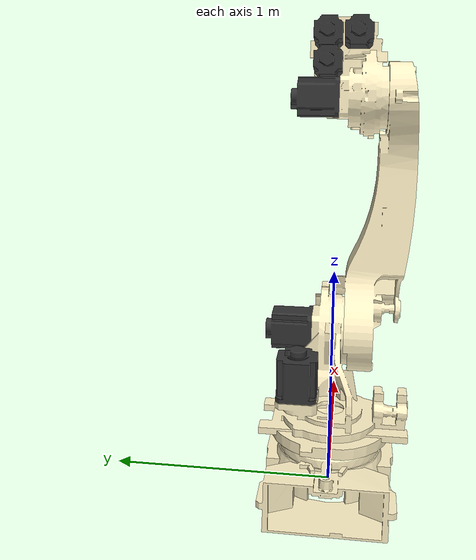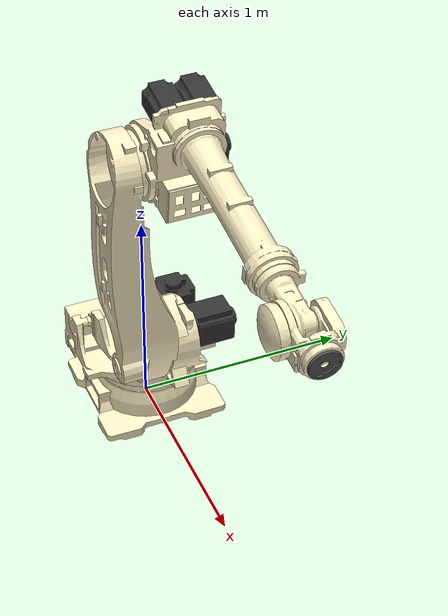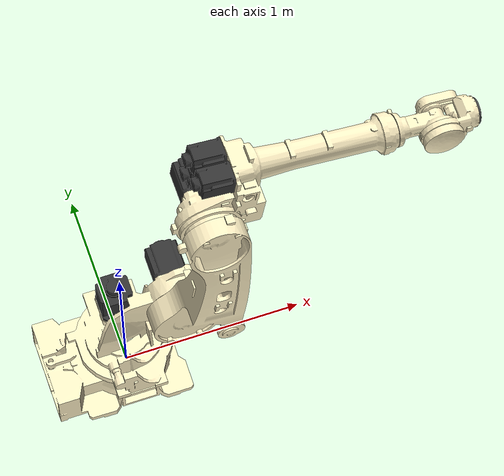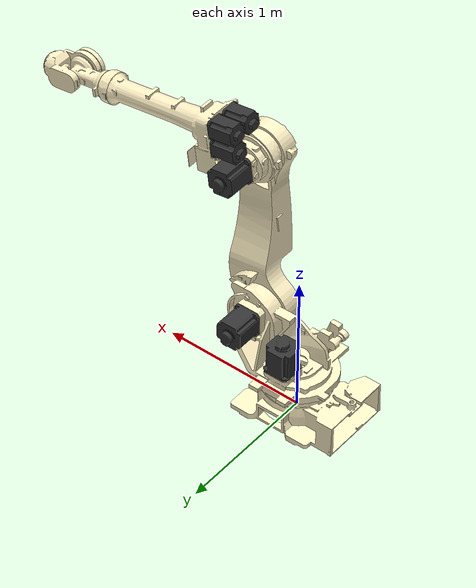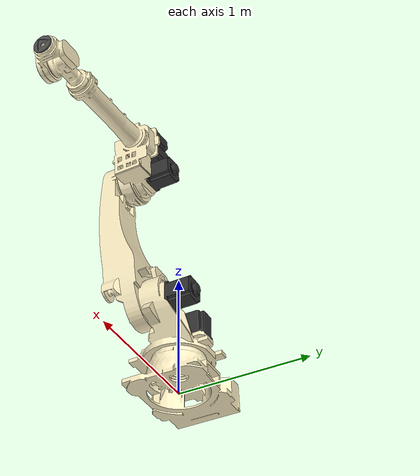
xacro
<?xml version="1.0" encoding="UTF-8"?>
<robot xmlns:xacro="http://wiki.ros.org/xacro" name="$(arg name)">
  <xacro:arg name="robot_model" default="hdr220_26" />
  <xacro:arg name="name" default="hdr_robot"/>
  <xacro:arg name="use_sim" default="false" />
  <xacro:arg name="use_mock_hardware" default="false" />
  <xacro:arg name="hdr_ros2_control" default="" />
  <xacro:arg name="hw_interface" default="" />
  <xacro:arg name="openapi_ip" default="192.168.1.150" />
  <xacro:arg name="openapi_port" default="8888" />
  <xacro:arg name="command_port" default="8000" />
  <xacro:arg name="command_start_time" default="-1.0" />
  <xacro:arg name="command_buffer_size" default="2" />
  <xacro:arg name="initial_positions_file" default=""/>
  <xacro:arg name="update_rate" default="100" />

  <xacro:property name="initial_positions_file" value="$(arg initial_positions_file)"/>

  <xacro:include filename="$(find hdr_description)/urdf/robots/$(arg robot_model)/$(arg robot_model).urdf.xacro" />
  <xacro:include filename="$(find hdr_description)/urdf/hdr.ros2_control.xacro" />

  <xacro:hdr_ros2_control
    name="$(arg name)"
    robot_model="$(arg robot_model)"
    use_sim="$(arg use_sim)"
    use_mock_hardware="$(arg use_mock_hardware)"
    initial_positions_file="$(arg initial_positions_file)"
    openapi_ip="$(arg openapi_ip)"
    openapi_port="$(arg openapi_port)"
    command_port="$(arg command_port)"
    command_start_time="$(arg command_start_time)"
    command_buffer_size="$(arg command_buffer_size)"
    update_rate="$(arg update_rate)"
  />

  <xacro:include filename="$(find hdr_description)/urdf/hdr_transmissions.xacro" />
  <xacro:hdr_transmission
    hw_interface="$(arg hw_interface)"
  />

  <xacro:if value="$(arg use_sim)">
    <link name="ground_plane">
      <visual>
        <origin rpy="0 0 0" xyz="0 0 0"/>
        <geometry>
          <box size="5 5 0"/>
        </geometry>
        <material name="ground_white">
          <color rgba="1 1 1 0.5"/>
        </material>
      </visual>
      <collision>
        <origin rpy="0 0 0" xyz="0 0 0"/>
        <geometry>
          <box size="5 5 0"/>
        </geometry>
      </collision>
    </link>

    <joint name="ground_plane_joint" type="fixed">
      <origin xyz="0 0 -0.01" rpy="0 0 0"/>
      <parent link="world"/>
      <child link="ground_plane"/>
    </joint>

    <gazebo reference="world">
    </gazebo>
    <gazebo>
      <plugin filename="libgz_ros2_control-system.so" name="gz_ros2_control::GazeboSimROS2ControlPlugin">
        <parameters>$(arg hdr_ros2_control)</parameters>
        <controller_manager_node_name>controller_manager</controller_manager_node_name>
      </plugin>
    </gazebo>
  </xacro:if>
</robot>

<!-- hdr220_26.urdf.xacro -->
<robot name="hdr_robot" xmlns:xacro="http://ros.org/wiki/xacro">
  <material name="ivory">
    <color rgba="1.0 0.945 0.773 1.0" />
  </material>
  <material name="black">
    <color rgba="0.2 0.2 0.2 1.0"/>
  </material>
  <material name="gray">
    <color rgba="0.3 0.3 0.3 1.0"/>
  </material>
  <xacro:property name="mesh_scale" value="0.001" />
  <link name="base_link">
    <visual>
      <geometry>
        <mesh filename="file://$(find hdr_description)/meshes/robots/hdr220_26/visual/base_body.stl" scale="${mesh_scale} ${mesh_scale} ${mesh_scale}"/>
      </geometry>
      <material name="ivory"/>
    </visual>
    <collision>
      <geometry>
        <mesh filename="file://$(find hdr_description)/meshes/robots/hdr220_26/collision/base_body.stl" scale="${mesh_scale} ${mesh_scale} ${mesh_scale}"/>
      </geometry>
    </collision>
    <inertial>
      <mass value="212.4525"/>
      <origin xyz="0 0 0" rpy="0 0 0"/>
      <inertia ixx="8.0534" ixy="0" ixz="0" iyy="11.7728" iyz="0" izz="16.4665"/>
    </inertial>
  </link>
  <link name="lower_frame_link">
    <visual>
      <geometry>
        <mesh filename="file://$(find hdr_description)/meshes/robots/hdr220_26/visual/lower_frame.stl" scale="${mesh_scale} ${mesh_scale} ${mesh_scale}"/>
      </geometry>
      <material name="ivory"/>
    </visual>
    <collision>
      <geometry>
        <mesh filename="file://$(find hdr_description)/meshes/robots/hdr220_26/collision/lower_frame.stl" scale="${mesh_scale} ${mesh_scale} ${mesh_scale}"/>
      </geometry>
    </collision>
    <inertial>
      <mass value="415.9115"/>
      <origin xyz="0 0 0" rpy="0 0 0"/>
      <inertia ixx="24.9038" ixy="0" ixz="0" iyy="32.199" iyz="0" izz="36.1335"/>
    </inertial>
  </link>
  <link name="upper_frame_link">
    <visual>
      <geometry>
        <mesh filename="file://$(find hdr_description)/meshes/robots/hdr220_26/visual/upper_frame.stl" scale="${mesh_scale} ${mesh_scale} ${mesh_scale}"/>
      </geometry>
      <material name="ivory"/>
    </visual>
    <collision>
      <geometry>
        <mesh filename="file://$(find hdr_description)/meshes/robots/hdr220_26/collision/upper_frame.stl" scale="${mesh_scale} ${mesh_scale} ${mesh_scale}"/>
      </geometry>
    </collision>
    <inertial>
      <mass value="149.0275"/>
      <origin xyz="0 0 0" rpy="0 0 0"/>
      <inertia ixx="28.1962" ixy="0" ixz="0" iyy="29.199" iyz="0" izz="4.4775"/>
    </inertial>
  </link>
  <link name="arm_link">
    <visual>
      <geometry>
        <mesh filename="file://$(find hdr_description)/meshes/robots/hdr220_26/visual/arm.stl" scale="${mesh_scale} ${mesh_scale} ${mesh_scale}"/>
      </geometry>
      <material name="ivory"/>
    </visual>
    <collision>
      <geometry>
        <mesh filename="file://$(find hdr_description)/meshes/robots/hdr220_26/collision/arm.stl" scale="${mesh_scale} ${mesh_scale} ${mesh_scale}"/>
      </geometry>
    </collision>
    <inertial>
      <mass value="254.6605"/>
      <origin xyz="0 0 0" rpy="0 0 0"/>
      <inertia ixx="9.9531" ixy="0" ixz="0" iyy="38.4396" iyz="0" izz="34.8443"/>
    </inertial>
  </link>
  <link name="wrist_body_link">
    <visual>
      <origin xyz="1.25 0 -0.008" rpy="0 0 0"/>
      <geometry>
        <mesh filename="file://$(find hdr_description)/meshes/robots/hdr220_26/visual/wrist_body.stl" scale="${mesh_scale} ${mesh_scale} ${mesh_scale}"/>
      </geometry>
      <material name="ivory"/>
    </visual>
    <collision>
      <origin xyz="1.25 0 -0.008" rpy="0 0 0"/>
      <geometry>
        <mesh filename="file://$(find hdr_description)/meshes/robots/hdr220_26/collision/wrist_body.stl" scale="${mesh_scale} ${mesh_scale} ${mesh_scale}"/>
      </geometry>
    </collision>
    <inertial>
      <mass value="19.59"/>
      <origin xyz="1.25 0 -0.008" rpy="0 0 0"/>
      <inertia ixx="0.1209" ixy="0" ixz="0" iyy="0.2284" iyz="0" izz="0.2388"/>
    </inertial>
  </link>
  <link name="wrist_holder_link">
    <visual>
      <geometry>
        <mesh filename="file://$(find hdr_description)/meshes/robots/hdr220_26/visual/wrist_holder.stl" scale="${mesh_scale} ${mesh_scale} ${mesh_scale}"/>
      </geometry>
      <material name="ivory"/>
    </visual>
    <collision>
      <geometry>
        <mesh filename="file://$(find hdr_description)/meshes/robots/hdr220_26/collision/wrist_holder.stl" scale="${mesh_scale} ${mesh_scale} ${mesh_scale}"/>
      </geometry>
    </collision>
    <inertial>
      <mass value="48.887"/>
      <origin xyz="0 0 0" rpy="0 0 0"/>
      <inertia ixx="0.5074" ixy="0" ixz="0" iyy="0.6284" iyz="0" izz="0.7214"/>
    </inertial>
  </link>
  <link name="flange_link">
    <visual>
      <origin xyz="-0.22 0 0" rpy="0 0 0"/>
      <geometry>
        <mesh filename="file://$(find hdr_description)/meshes/robots/hdr220_26/visual/flange.stl" scale="${mesh_scale} ${mesh_scale} ${mesh_scale}"/>
      </geometry>
      <material name="gray"/>
    </visual>
    <collision>
      <origin xyz="-0.22 0 0" rpy="0 0 0"/>
      <geometry>
        <mesh filename="file://$(find hdr_description)/meshes/robots/hdr220_26/collision/flange.stl" scale="${mesh_scale} ${mesh_scale} ${mesh_scale}"/>
      </geometry>
    </collision>
    <inertial>
      <mass value="2.121"/>
      <origin xyz="0 0 0" rpy="0 0 0"/>
      <inertia ixx="0.0069" ixy="0" ixz="0" iyy="0.0035" iyz="0" izz="0.0035"/>
    </inertial>
  </link>
  <link name="motor_s">
    <visual>
      <origin xyz="-0.311 0 -1.707" rpy="0 0 0"/>
      <geometry>
        <mesh filename="file://$(find hdr_description)/meshes/robots/hdr220_26/visual/motor_s.stl" scale="${mesh_scale} ${mesh_scale} ${mesh_scale}"/>
      </geometry>
      <material name="black"/>
    </visual>
    <collision>
      <origin xyz="-0.311 0 -1.707" rpy="0 0 0"/>
      <geometry>
        <mesh filename="file://$(find hdr_description)/meshes/robots/hdr220_26/collision/motor_s.stl" scale="${mesh_scale} ${mesh_scale} ${mesh_scale}"/>
      </geometry>
    </collision>
    <inertial>
      <mass value="0"/>
      <origin xyz="0 0 0" rpy="0 0 0"/>
      <inertia ixx="1e-6" ixy="0" ixz="0" iyy="1e-6" iyz="0" izz="1e-6"/>
    </inertial>
  </link>
  <link name="motor_h">
    <visual>
      <geometry>
        <mesh filename="file://$(find hdr_description)/meshes/robots/hdr220_26/visual/motor_s.stl" scale="${mesh_scale} ${mesh_scale} ${mesh_scale}"/>
      </geometry>
      <material name="black"/>
    </visual>
    <collision>
      <geometry>
        <mesh filename="file://$(find hdr_description)/meshes/robots/hdr220_26/collision/motor_s.stl" scale="${mesh_scale} ${mesh_scale} ${mesh_scale}"/>
      </geometry>
    </collision>
    <inertial>
      <mass value="0"/>
      <origin xyz="0 0 0" rpy="0 0 0"/>
      <inertia ixx="1e-6" ixy="0" ixz="0" iyy="1e-6" iyz="0" izz="1e-6"/>
    </inertial>
  </link>
  <link name="motor_v">
    <visual>
      <geometry>
        <mesh filename="file://$(find hdr_description)/meshes/robots/hdr220_26/visual/motor_s.stl" scale="${mesh_scale} ${mesh_scale} ${mesh_scale}"/>
      </geometry>
      <material name="black"/>
    </visual>
    <collision>
      <geometry>
        <mesh filename="file://$(find hdr_description)/meshes/robots/hdr220_26/collision/motor_s.stl" scale="${mesh_scale} ${mesh_scale} ${mesh_scale}"/>
      </geometry>
    </collision>
    <inertial>
      <mass value="0"/>
      <origin xyz="0 0 0" rpy="0 0 0"/>
      <inertia ixx="1e-6" ixy="0" ixz="0" iyy="1e-6" iyz="0" izz="1e-6"/>
    </inertial>
  </link>
  <link name="motor_r2">
    <visual>
      <geometry>
        <mesh filename="file://$(find hdr_description)/meshes/robots/hdr220_26/visual/motor_r2.stl" scale="${mesh_scale} ${mesh_scale} ${mesh_scale}"/>
      </geometry>
      <material name="black"/>
    </visual>
    <collision>
      <geometry>
        <mesh filename="file://$(find hdr_description)/meshes/robots/hdr220_26/collision/motor_r2.stl" scale="${mesh_scale} ${mesh_scale} ${mesh_scale}"/>
      </geometry>
    </collision>
    <inertial>
      <mass value="0"/>
      <origin xyz="0 0 0" rpy="0 0 0"/>
      <inertia ixx="1e-6" ixy="0" ixz="0" iyy="1e-6" iyz="0" izz="1e-6"/>
    </inertial>
  </link>
  <link name="motor_b">
    <visual>
      <geometry>
        <mesh filename="file://$(find hdr_description)/meshes/robots/hdr220_26/visual/motor_r2.stl" scale="${mesh_scale} ${mesh_scale} ${mesh_scale}"/>
      </geometry>
      <material name="black"/>
    </visual>
    <collision>
      <geometry>
        <mesh filename="file://$(find hdr_description)/meshes/robots/hdr220_26/collision/motor_r2.stl" scale="${mesh_scale} ${mesh_scale} ${mesh_scale}"/>
      </geometry>
    </collision>
    <inertial>
      <mass value="0"/>
      <origin xyz="0 0 0" rpy="0 0 0"/>
      <inertia ixx="1e-6" ixy="0" ixz="0" iyy="1e-6" iyz="0" izz="1e-6"/>
    </inertial>
  </link>
  <link name="motor_r1">
    <visual>
      <geometry>
        <mesh filename="file://$(find hdr_description)/meshes/robots/hdr220_26/visual/motor_r2.stl" scale="${mesh_scale} ${mesh_scale} ${mesh_scale}"/>
      </geometry>
      <material name="black"/>
    </visual>
    <collision>
      <geometry>
        <mesh filename="file://$(find hdr_description)/meshes/robots/hdr220_26/collision/motor_r2.stl" scale="${mesh_scale} ${mesh_scale} ${mesh_scale}"/>
      </geometry>
    </collision>
    <inertial>
      <mass value="0"/>
      <origin xyz="0 0 0" rpy="0 0 0"/>
      <inertia ixx="1e-6" ixy="0" ixz="0" iyy="1e-6" iyz="0" izz="1e-6"/>
    </inertial>
  </link>

  <joint name="j1" type="revolute">
    <parent link="base_link"/>
    <child link="lower_frame_link"/>
    <origin xyz="0 0 0" rpy="0 0 0"/>
    <axis xyz="0 0 1"/>
    <limit lower="-3.142" upper="3.142" effort="4720.8" velocity="2.094"/>
  </joint>
  <joint name="j2" type="revolute">
    <parent link="lower_frame_link"/>
    <child link="upper_frame_link"/>
    <origin xyz="0.312 0 0.608" rpy="0 1.5708 0"/>
    <axis xyz="0 -1 0"/>
    <limit lower="0.175" upper="2.705" effort="4990.6" velocity="1.833"/>
  </joint>
  <joint name="j3" type="revolute">
    <parent link="upper_frame_link"/>
    <child link="arm_link"/>
    <origin xyz="0 0 1.1" rpy="0 0 0"/>
    <axis xyz="0 -1 0"/>
    <limit lower="-1.396" upper="3.316" effort="4990.6" velocity="2.007"/>
  </joint>
  <joint name="j4" type="revolute">
    <parent link="arm_link"/>
    <child link="wrist_body_link"/>
    <origin xyz="0 0 0.23" rpy="0 0 0"/>
    <axis xyz="1 0 0"/>
    <limit lower="-6.284" upper="6.284" effort="1086.8" velocity="2.531"/>
  </joint>
  <joint name="j5" type="revolute">
    <parent link="wrist_body_link"/>
    <child link="wrist_holder_link"/>
    <origin xyz="1.25 0 0" rpy="0 0 0"/>
    <axis xyz="0 -1 0"/>
    <limit lower="-2.234" upper="2.234" effort="1099.7" velocity="2.531"/>
  </joint>
  <joint name="j6" type="revolute">
    <parent link="wrist_holder_link"/>
    <child link="flange_link"/>
    <origin xyz="0.22 0 0" rpy="0 0 0"/>
    <axis xyz="1 0 0"/>
    <limit lower="-6.284" upper="6.284" effort="725.8" velocity="3.84"/>
  </joint>

  <joint name="joint_motor_s" type="fixed">
    <parent link="lower_frame_link"/>
    <child link="motor_s"/>
    <origin xyz="0 0.152 0.399" rpy="1.5708 0 0"/>
    <axis xyz="1 0 0"/>
  </joint>
  <joint name="joint_motor_h" type="fixed">
    <parent link="lower_frame_link"/>
    <child link="motor_h"/>
    <origin xyz="0 0.0935 -1.101" rpy="0 0 0"/>
    <axis xyz="1 0 0"/>
  </joint>
  <joint name="joint_motor_v" type="fixed">
    <parent link="arm_link"/>
    <child link="motor_v"/>
    <origin xyz="-0.312 0 -1.708" rpy="0 0 0"/>
    <axis xyz="1 0 0"/>
  </joint>
  <joint name="joint_motor_r2" type="fixed">
    <parent link="arm_link"/>
    <child link="motor_r2"/>
    <origin xyz="-0.311 -0.002 -1.841" rpy="0 0 0"/>
    <axis xyz="1 0 0"/>
  </joint>
  <joint name="joint_motor_b" type="fixed">
    <parent link="arm_link"/>
    <child link="motor_b"/>
    <origin xyz="-0.311 0 -1.709" rpy="0 0 0"/>
    <axis xyz="1 0 0"/>
  </joint>
  <joint name="joint_motor_r1" type="fixed">
    <parent link="arm_link"/>
    <child link="motor_r1"/>
    <origin xyz="-0.312 -0.14 -1.709" rpy="0 0 0"/>
    <axis xyz="1 0 0"/>
  </joint>

  <link name="base"/>
  <joint name="base_link-base" type="fixed">
    <origin xyz="0 0 0" rpy="0 0 0"/>
    <parent link="base_link"/>
    <child link="base"/>
  </joint>
  <link name="flange"/>
  <joint name="flange_link-flange" type="fixed">
    <origin xyz="0 0 0" rpy="0 0 0"/>
    <parent link="flange_link"/>
    <child link="flange"/>
  </joint>
  <link name="tool0"/>
  <joint name="flange-tool0" type="fixed">
    <origin xyz="0 0 0" rpy="0 1.5708 0"/>
    <parent link="flange"/>
    <child link="tool0"/>
  </joint>

  <link name="world"/>
  <joint name="world_joint" type="fixed">
    <parent link="world"/>
    <child link="base_link"/>
    <origin xyz="0 0 0" rpy="0 0 0"/>
  </joint>
</robot>
